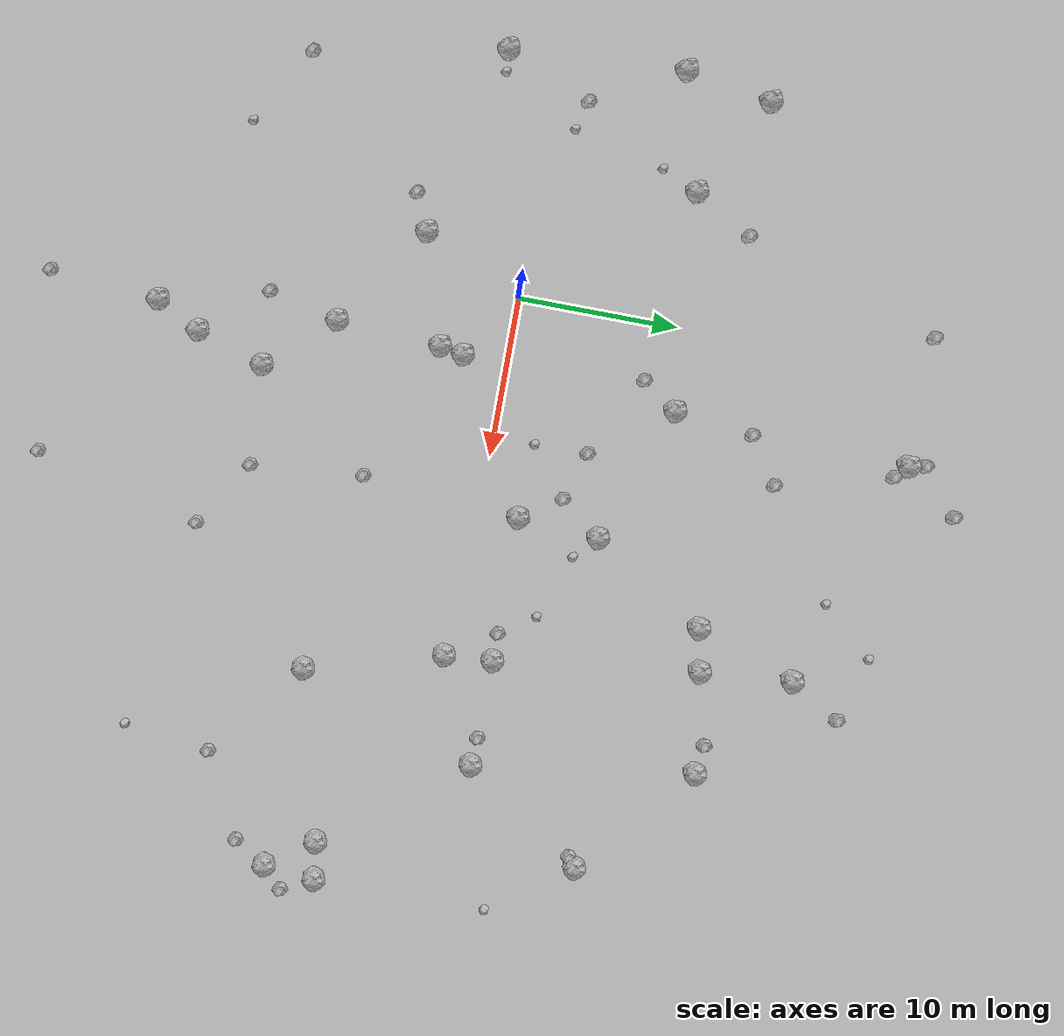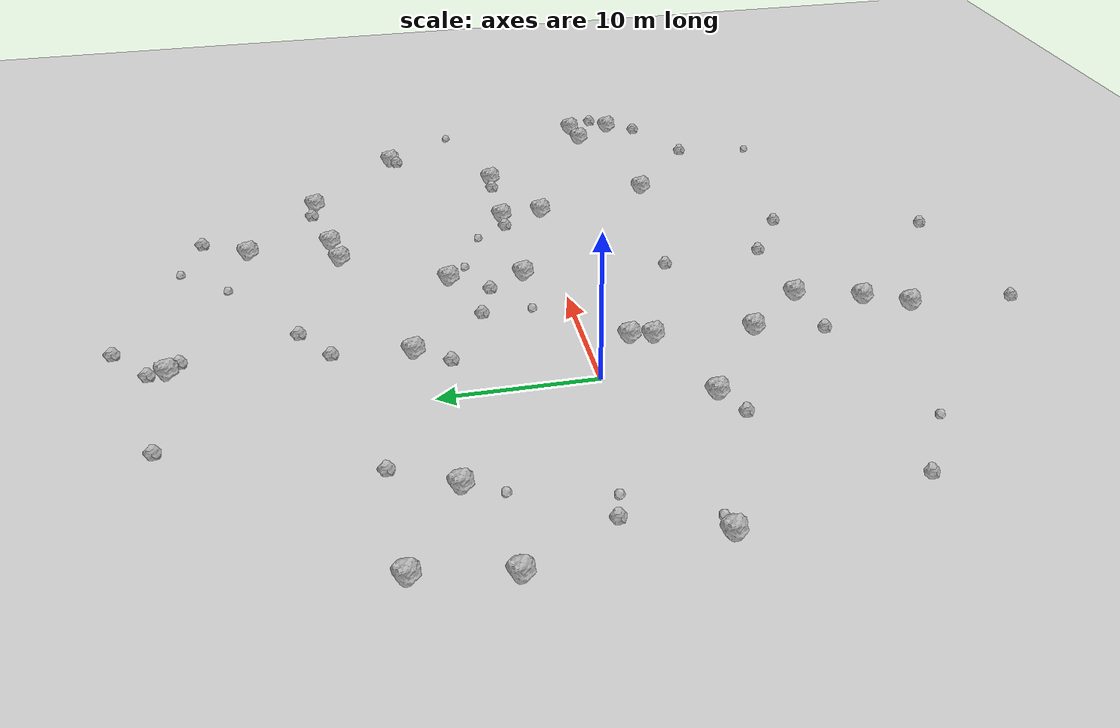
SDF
<sdf version="1.6">
 <world name="default">
  <include><uri>model://custom_ground</uri></include>
  <include><uri>model://sun</uri></include>
  <model name="rock1_0_0">
   <include><uri>model://rock1</uri><pose>-2.9324141354575097 -6.368236812320632 0.5 0 0 0</pose></include>
  </model>
  <model name="rock1_0_1">
   <include><uri>model://rock1</uri><pose>13.46610589667953 2.4398403298637845 0.5 0 0 0</pose></include>
  </model>
  <model name="rock1_0_2">
   <include><uri>model://rock1</uri><pose>20.34053255283797 20.99698691956157 0.5 0 0 0</pose></include>
  </model>
  <model name="rock1_0_3">
   <include><uri>model://rock1</uri><pose>5.2022583293776705 10.7854915841274 0.5 0 0 0</pose></include>
  </model>
  <model name="rock1_0_4">
   <include><uri>model://rock1</uri><pose>13.807694923434667 7.545383934660585 0.5 0 0 0</pose></include>
  </model>
  <model name="rock1_0_5">
   <include><uri>model://rock1</uri><pose>3.882870924408973 -4.257634271946809 0.5 0 0 0</pose></include>
  </model>
  <model name="rock1_0_6">
   <include><uri>model://rock1</uri><pose>-8.389569873573956 9.612759528949312 0.5 0 0 0</pose></include>
  </model>
  <model name="rock1_0_7">
   <include><uri>model://rock1</uri><pose>5.91481263053959 25.62177669870372 0.5 0 0 0</pose></include>
  </model>
  <model name="rock1_0_8">
   <include><uri>model://rock1</uri><pose>29.066266125253513 2.3659846462236658 0.5 0 0 0</pose></include>
  </model>
  <model name="rock1_0_9">
   <include><uri>model://rock1</uri><pose>18.15856218442294 14.715251476516194 0.5 0 0 0</pose></include>
  </model>
  <model name="rock1_0_10">
   <include><uri>model://rock1</uri><pose>35.48825071149271 -6.189548473605676 0.5 0 0 0</pose></include>
  </model>
  <model name="rock1_0_11">
   <include><uri>model://rock1</uri><pose>37.791730280886924 -5.878001931229068 0.5 0 0 0</pose></include>
  </model>
  <model name="rock1_0_12">
   <include><uri>model://rock1</uri><pose>37.489626567352694 -9.060976700686936 0.5 0 0 0</pose></include>
  </model>
  <model name="rock1_0_13">
   <include><uri>model://rock1</uri><pose>22.467034822884216 2.5062110923653407 0.5 0 0 0</pose></include>
  </model>
  <model name="rock1_0_14">
   <include><uri>model://rock1</uri><pose>25.06688469210004 -8.909779256055394 0.5 0 0 0</pose></include>
  </model>
  <model name="rock1_0_15">
   <include><uri>model://rock1</uri><pose>27.060633304240845 16.11708083216547 0.5 0 0 0</pose></include>
  </model>
  <model name="rock1_0_16">
   <include><uri>model://rock1</uri><pose>22.673257288895968 -0.4912072563856462 0.5 0 0 0</pose></include>
  </model>
  <model name="rock1_0_17">
   <include><uri>model://rock1</uri><pose>-14.720571240163167 13.097522298830306 0.5 0 0 0</pose></include>
  </model>
  <model name="rock1_0_18">
   <include><uri>model://rock1</uri><pose>5.652921043723843 -19.17207267172882 0.5 0 0 0</pose></include>
  </model>
  <model name="rock1_0_19">
   <include><uri>model://rock1</uri><pose>4.212767519009592 -21.939610942625166 0.5 0 0 0</pose></include>
  </model>
  <model name="rock1_0_20">
   <include><uri>model://rock1</uri><pose>7.025915366520991 -14.885467555257843 0.5 0 0 0</pose></include>
  </model>
  <model name="rock1_0_21">
   <include><uri>model://rock1</uri><pose>-14.95244829147186 -3.4588617004487006 0.5 0 0 0</pose></include>
  </model>
  <model name="rock1_0_22">
   <include><uri>model://rock1</uri><pose>20.796471267207245 15.248260672883916 0.5 0 0 0</pose></include>
  </model>
  <model name="rock1_0_23">
   <include><uri>model://rock1</uri><pose>34.141163504209956 9.836183012746282 0.5 0 0 0</pose></include>
  </model>
  <model name="rock1_0_24">
   <include><uri>model://rock1</uri><pose>3.469520152777868 -10.822815651152627 0.5 0 0 0</pose></include>
  </model>
  <model name="rock1_0_25">
   <include><uri>model://rock1</uri><pose>4.151924267984967 -2.7777814685930764 0.5 0 0 0</pose></include>
  </model>
  <model name="rock1_0_26">
   <include><uri>model://rock1</uri><pose>-15.675651259611762 7.624797963854576 0.5 0 0 0</pose></include>
  </model>
  <model name="rock2_0_0">
   <include><uri>model://rock2</uri><pose>8.56708330937509 17.73904087781232 0.3 0 0 0</pose></include>
  </model>
  <model name="rock2_0_1">
   <include><uri>model://rock2</uri><pose>-12.73490866337433 -15.363794722363357 0.3 0 0 0</pose></include>
  </model>
  <model name="rock2_0_2">
   <include><uri>model://rock2</uri><pose>11.795537241028732 4.987536789957886 0.3 0 0 0</pose></include>
  </model>
  <model name="rock2_0_3">
   <include><uri>model://rock2</uri><pose>17.406875028853335 -17.13469149350483 0.3 0 0 0</pose></include>
  </model>
  <model name="rock2_0_4">
   <include><uri>model://rock2</uri><pose>2.4194377632378092 -15.250667296753047 0.3 0 0 0</pose></include>
  </model>
  <model name="rock2_0_5">
   <include><uri>model://rock2</uri><pose>8.488345011271633 29.071413524012826 0.3 0 0 0</pose></include>
  </model>
  <model name="rock2_0_6">
   <include><uri>model://rock2</uri><pose>3.618254422430695 8.615480266341073 0.3 0 0 0</pose></include>
  </model>
  <model name="rock2_0_7">
   <include><uri>model://rock2</uri><pose>6.700646327570507 24.952146245609498 0.3 0 0 0</pose></include>
  </model>
  <model name="rock2_0_8">
   <include><uri>model://rock2</uri><pose>13.265486540809363 -14.503659107865888 0.3 0 0 0</pose></include>
  </model>
  <model name="rock2_0_9">
   <include><uri>model://rock2</uri><pose>22.19783005072634 24.23117611979469 0.3 0 0 0</pose></include>
  </model>
  <model name="rock2_0_10">
   <include><uri>model://rock2</uri><pose>-6.3711401505640435 13.38547749454824 0.3 0 0 0</pose></include>
  </model>
  <model name="rock2_0_11">
   <include><uri>model://rock2</uri><pose>5.67654307018244 26.77121354266624 0.3 0 0 0</pose></include>
  </model>
  <model name="rock2_0_12">
   <include><uri>model://rock2</uri><pose>36.30613639447473 -11.114217703448496 0.3 0 0 0</pose></include>
  </model>
  <model name="rock2_0_13">
   <include><uri>model://rock2</uri><pose>8.737260625918381 5.9770673258229365 0.3 0 0 0</pose></include>
  </model>
  <model name="rock2_0_14">
   <include><uri>model://rock2</uri><pose>3.603408200137295 -28.8995255031459 0.3 0 0 0</pose></include>
  </model>
  <model name="rock2_0_15">
   <include><uri>model://rock2</uri><pose>-12.779948892514465 2.0466476821020905 0.3 0 0 0</pose></include>
  </model>
  <model name="rock2_0_16">
   <include><uri>model://rock2</uri><pose>25.254088206401136 16.410387931614537 0.3 0 0 0</pose></include>
  </model>
  <model name="rock2_0_17">
   <include><uri>model://rock2</uri><pose>20.760701807275538 2.534882022445288 0.3 0 0 0</pose></include>
  </model>
  <model name="rock2_0_18">
   <include><uri>model://rock2</uri><pose>38.83498487604449 -7.837967504967406 0.3 0 0 0</pose></include>
  </model>
  <model name="rock2_0_19">
   <include><uri>model://rock2</uri><pose>12.64199049090223 -7.47627772629318 0.3 0 0 0</pose></include>
  </model>
  <model name="rock2_0_20">
   <include><uri>model://rock2</uri><pose>-5.285332718605929 -7.410247533426912 0.3 0 0 0</pose></include>
  </model>
  <model name="rock2_0_21">
   <include><uri>model://rock2</uri><pose>-2.2695544641724155 25.85945105974796 0.3 0 0 0</pose></include>
  </model>
  <model name="rock2_0_22">
   <include><uri>model://rock2</uri><pose>33.578110315664844 9.403591700333301 0.3 0 0 0</pose></include>
  </model>
  <model name="rock2_0_23">
   <include><uri>model://rock2</uri><pose>27.371622589726485 2.4908124234455826 0.3 0 0 0</pose></include>
  </model>
  <model name="rock2_0_24">
   <include><uri>model://rock2</uri><pose>5.741670624189176 15.836641174411483 0.3 0 0 0</pose></include>
  </model>
  <model name="rock2_0_25">
   <include><uri>model://rock2</uri><pose>14.801483288739597 -27.608426739981617 0.3 0 0 0</pose></include>
  </model>
  <model name="rock2_0_26">
   <include><uri>model://rock2</uri><pose>31.191121601790194 -13.807028844668771 0.3 0 0 0</pose></include>
  </model>
  <model name="rock3_0_0">
   <include><uri>model://rock3</uri><pose>15.221424498030053 6.225143285999664 0.2 0 0 0</pose></include>
  </model>
  <model name="rock3_0_1">
   <include><uri>model://rock3</uri><pose>-9.538513821511058 7.310590706947913 0.2 0 0 0</pose></include>
  </model>
  <model name="rock3_0_2">
   <include><uri>model://rock3</uri><pose>18.120842651205713 25.48493869486724 0.2 0 0 0</pose></include>
  </model>
  <model name="rock3_0_3">
   <include><uri>model://rock3</uri><pose>37.79471746176245 4.824640972387897 0.2 0 0 0</pose></include>
  </model>
  <model name="rock3_0_4">
   <include><uri>model://rock3</uri><pose>-13.690207615545484 -3.3954374056214895 0.2 0 0 0</pose></include>
  </model>
  <model name="rock3_0_5">
   <include><uri>model://rock3</uri><pose>19.279533552422834 4.6988335110949535 0.2 0 0 0</pose></include>
  </model>
  <model name="rock3_0_6">
   <include><uri>model://rock3</uri><pose>-7.849259238556668 -18.288692682406293 0.2 0 0 0</pose></include>
  </model>
  <model name="rock3_0_7">
   <include><uri>model://rock3</uri><pose>-10.964135106389858 1.5007230197050276 0.2 0 0 0</pose></include>
  </model>
  <model name="rock3_0_8">
   <include><uri>model://rock3</uri><pose>30.488881406057608 -19.262697589713262 0.2 0 0 0</pose></include>
  </model>
  <model name="rock3_0_9">
   <include><uri>model://rock3</uri><pose>8.761870356711345 2.6034370426198663 0.2 0 0 0</pose></include>
  </model>
  <model name="rock3_0_10">
   <include><uri>model://rock3</uri><pose>15.22158635747001 22.23393133342043 0.2 0 0 0</pose></include>
  </model>
 </world>
</sdf>
